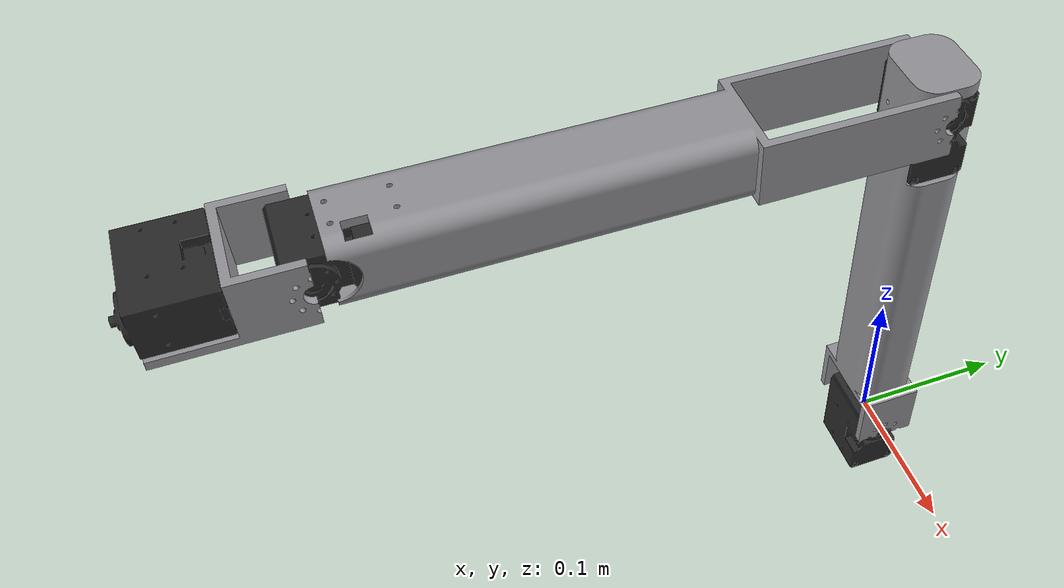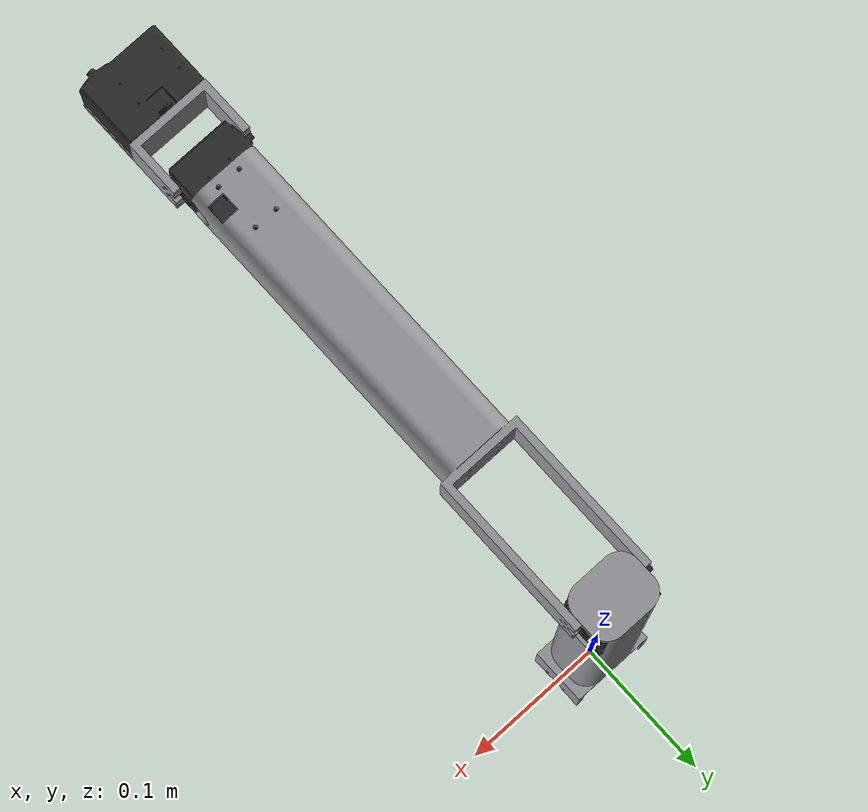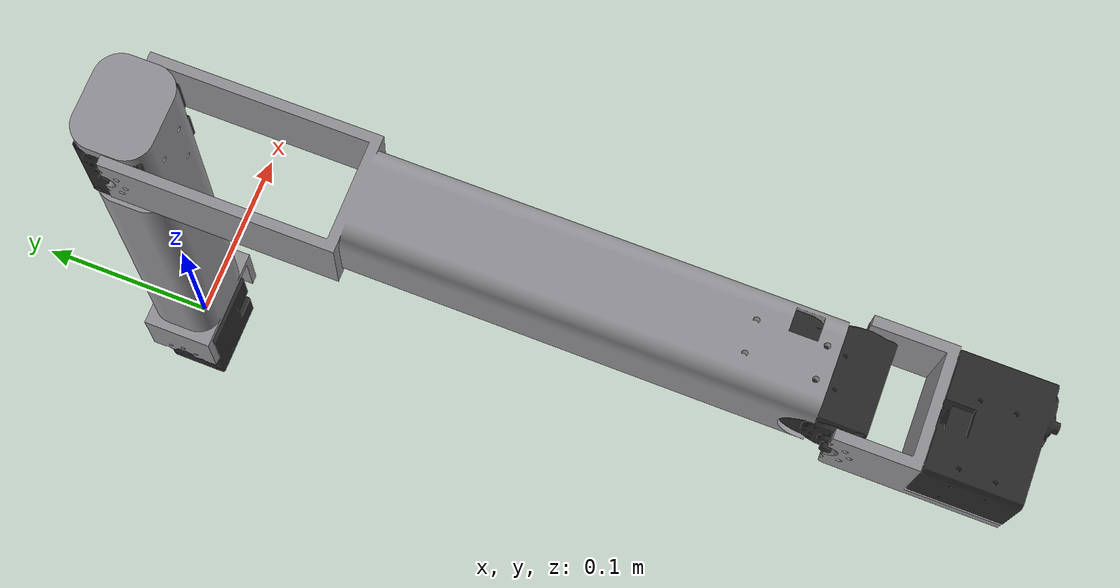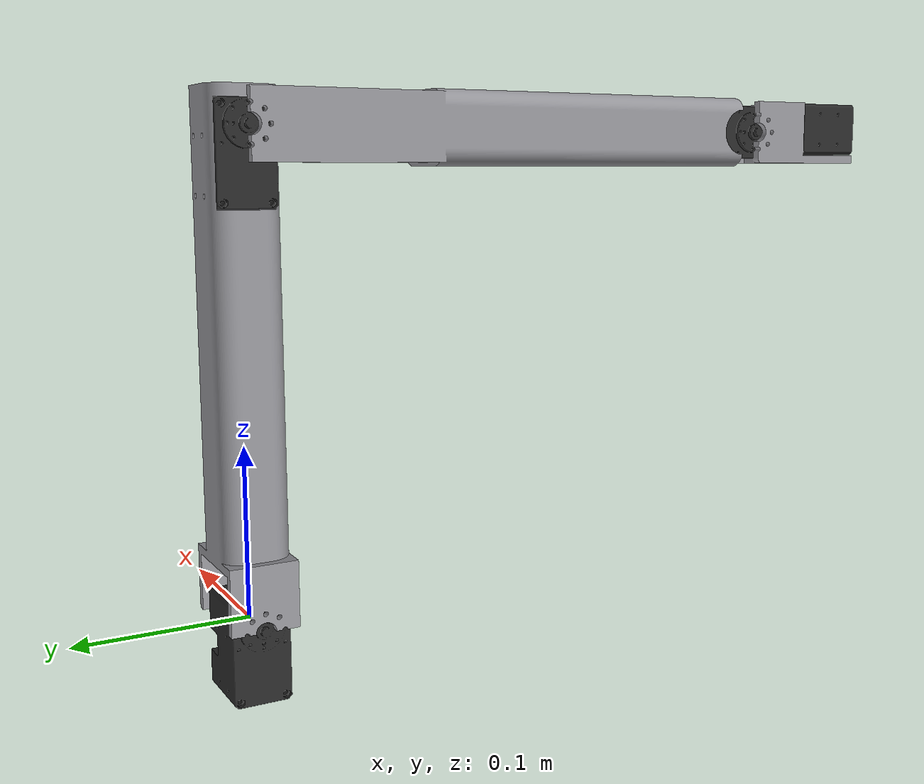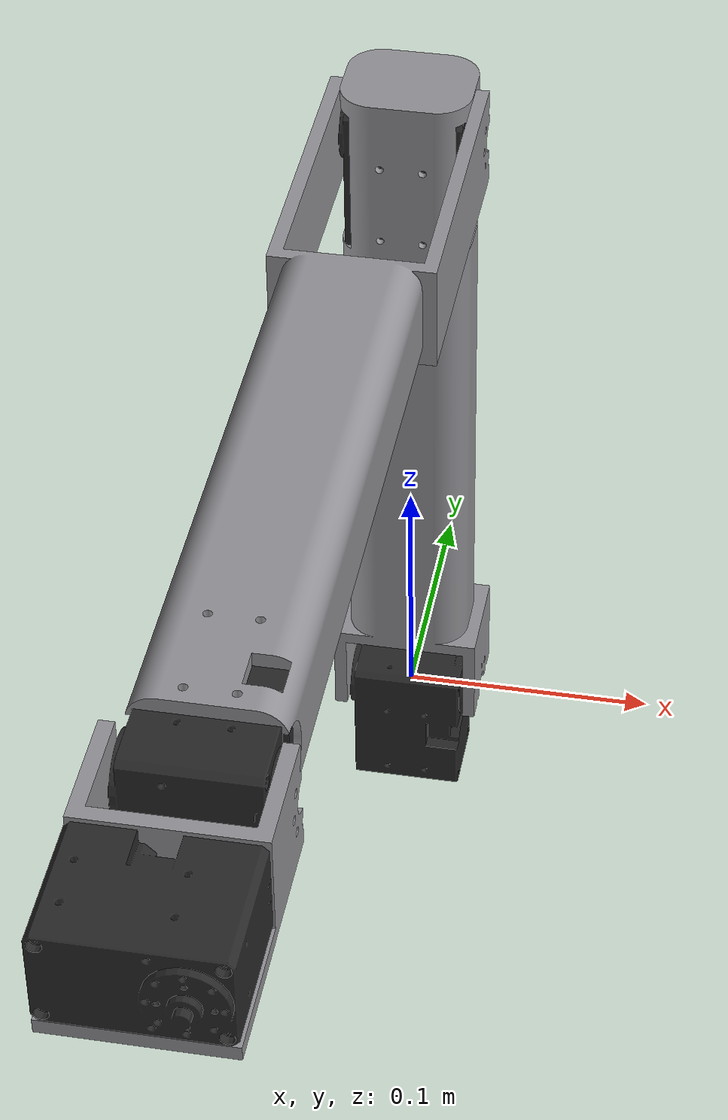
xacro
<?xml version="1.0"?>
<!-- Standalone robot used by the MoveIt demo, with mock ros2_control hardware. -->
<robot name="rav_manipulator" xmlns:xacro="http://www.ros.org/wiki/xacro">
  <xacro:arg name="use_fake_hardware" default="true"/>
  <xacro:include filename="$(find rav_description)/urdf/rav_manipulator.urdf.xacro"/>

  <link name="manipulator_world"/>
  <xacro:rav_manipulator
      parent_link="manipulator_world"
      mount_xyz="0 0 0"
      mount_rpy="0 0 0"
      use_fake_hardware="$(arg use_fake_hardware)"/>
</robot>

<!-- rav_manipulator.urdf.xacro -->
<robot name="rav_manipulator" xmlns:xacro="http://www.ros.org/wiki/xacro">

  <xacro:macro name="rav_manipulator"
               params="parent_link mount_xyz:='0 0 0' mount_rpy:='0 0 0' use_fake_hardware:=false">

    <xacro:property name="j1_to_j2_y" value="0.000029639983"/>
    <xacro:property name="j1_to_j2_z" value="0.278118072919"/>
    <xacro:property name="j2_to_j3_y" value="-0.343030187591"/>
    <xacro:property name="j2_to_j3_z" value="-0.000015558969"/>

    <!-- Limites provisórios: somente para RViz/MoveIt sem hardware real. -->
    <xacro:property name="joint_lower_limit" value="${-pi / 2.0}"/>
    <xacro:property name="joint_upper_limit" value="${ pi / 2.0}"/>
    <xacro:property name="joint_effort_limit" value="10.0"/>
    <xacro:property name="joint_velocity_limit" value="0.50"/>

    <material name="rav_manipulator_motor">
      <color rgba="0.16 0.16 0.16 1.0"/>
    </material>
    <material name="rav_manipulator_structure">
      <color rgba="0.58 0.58 0.60 1.0"/>
    </material>

    <joint name="rav_manipulator_mount_joint" type="fixed">
      <parent link="${parent_link}"/>
      <child link="manipulator_base_link"/>
      <origin xyz="${mount_xyz}" rpy="${mount_rpy}"/>
    </joint>

    <!--
      Dynamixel 1: a carcaça é fixada diretamente à estrutura interna do RAV.
      O origin abaixo leva o centro do horn do STL para a origem do link.
    -->
    <link name="manipulator_base_link">
      <visual>
        <origin xyz="0 0.047471563258 -0.733684638388" rpy="0 0 0"/>
        <geometry>
          <mesh filename="package://rav_description/meshes/manipulator/dynamixel_xm540.stl"
                scale="0.001 0.001 0.001"/>
        </geometry>
        <material name="rav_manipulator_motor"/>
      </visual>
      <collision>
        <origin xyz="0 0.047471563258 -0.733684638388" rpy="0 0 0"/>
        <geometry>
          <mesh filename="package://rav_description/meshes/manipulator/dynamixel_xm540.stl"
                scale="0.001 0.001 0.001"/>
        </geometry>
      </collision>
    </link>

    <!-- J1: o horn do Dynamixel 1 movimenta U aço 1 + Link 1. -->
    <joint name="shoulder_joint" type="revolute">
      <parent link="manipulator_base_link"/>
      <child link="shoulder_link"/>
      <origin xyz="0 0 0" rpy="0 0 0"/>
      <axis xyz="1 0 0"/>
      <limit lower="${joint_lower_limit}" upper="${joint_upper_limit}"
             effort="${joint_effort_limit}" velocity="${joint_velocity_limit}"/>
    </joint>

    <!--
      Conjunto rígido do primeiro elo:
      U aço 1 + Link 1 + carcaça fixa do Dynamixel 2.
    -->
    <link name="shoulder_link">
      <visual>
        <origin xyz="0 0.047471563258 -0.733684638388" rpy="0 0 0"/>
        <geometry>
          <mesh filename="package://rav_description/meshes/manipulator/link_1_assembly.stl"
                scale="0.001 0.001 0.001"/>
        </geometry>
        <material name="rav_manipulator_structure"/>
      </visual>
      <collision>
        <origin xyz="0 0.047471563258 -0.733684638388" rpy="0 0 0"/>
        <geometry>
          <mesh filename="package://rav_description/meshes/manipulator/link_1_assembly.stl"
                scale="0.001 0.001 0.001"/>
        </geometry>
      </collision>

      <!-- Corpo do Dynamixel 2, fixo no Link 1. -->
      <visual>
        <origin xyz="0 0.047501203241 -0.455566565469" rpy="0 0 0"/>
        <geometry>
          <mesh filename="package://rav_description/meshes/manipulator/dynamixel_xm540.stl"
                scale="0.001 0.001 0.001"/>
        </geometry>
        <material name="rav_manipulator_motor"/>
      </visual>
      <collision>
        <origin xyz="0 0.047501203241 -0.455566565469" rpy="0 0 0"/>
        <geometry>
          <mesh filename="package://rav_description/meshes/manipulator/dynamixel_xm540.stl"
                scale="0.001 0.001 0.001"/>
        </geometry>
      </collision>
    </link>

    <!-- J2: o horn do Dynamixel 2 movimenta U aço 2 + Link 2. -->
    <joint name="elbow_joint" type="revolute">
      <parent link="shoulder_link"/>
      <child link="elbow_link"/>
      <origin xyz="0 ${j1_to_j2_y} ${j1_to_j2_z}" rpy="0 0 0"/>
      <axis xyz="1 0 0"/>
      <limit lower="${joint_lower_limit}" upper="${joint_upper_limit}"
             effort="${joint_effort_limit}" velocity="${joint_velocity_limit}"/>
    </joint>

    <!--
      Conjunto rígido do segundo elo:
      U aço 2 + Link 2 + carcaça fixa do Dynamixel 3.
    -->
    <link name="elbow_link">
      <visual>
        <origin xyz="0 0.047441923275 -1.011802711307" rpy="0 0 0"/>
        <geometry>
          <mesh filename="package://rav_description/meshes/manipulator/link_2_assembly.stl"
                scale="0.001 0.001 0.001"/>
        </geometry>
        <material name="rav_manipulator_structure"/>
      </visual>
      <collision>
        <origin xyz="0 0.047441923275 -1.011802711307" rpy="0 0 0"/>
        <geometry>
          <mesh filename="package://rav_description/meshes/manipulator/link_2_assembly.stl"
                scale="0.001 0.001 0.001"/>
        </geometry>
      </collision>

      <visual>
        <origin xyz="0 0.390654450797 0.047456004289" rpy="1.57079632679 0 0"/>
        <geometry>
          <mesh filename="package://rav_description/meshes/manipulator/dynamixel_xm540.stl"
                scale="0.001 0.001 0.001"/>
        </geometry>
        <material name="rav_manipulator_motor"/>
      </visual>
      <collision>
        <origin xyz="0 0.390654450797 0.047456004289" rpy="1.57079632679 0 0"/>
        <geometry>
          <mesh filename="package://rav_description/meshes/manipulator/dynamixel_xm540.stl"
                scale="0.001 0.001 0.001"/>
        </geometry>
      </collision>
    </link>

    <!-- J3: o horn do Dynamixel 3 movimenta U aço 3 e a futura garra. -->
    <joint name="wrist_joint" type="revolute">
      <parent link="elbow_link"/>
      <child link="wrist_link"/>
      <origin xyz="0 ${j2_to_j3_y} ${j2_to_j3_z}" rpy="0 0 0"/>
      <axis xyz="1 0 0"/>
      <limit lower="${joint_lower_limit}" upper="${joint_upper_limit}"
             effort="${joint_effort_limit}" velocity="${joint_velocity_limit}"/>
    </joint>

    <!-- U aço 3, onde o Dynamixel 4 será fixado quando a garra entrar. -->
    <link name="wrist_link">
      <visual>
        <origin xyz="0 0.390472110866 -1.011787152338" rpy="0 0 0"/>
        <geometry>
          <mesh filename="package://rav_description/meshes/manipulator/wrist_assembly.stl"
                scale="0.001 0.001 0.001"/>
        </geometry>
        <material name="rav_manipulator_structure"/>
      </visual>
      <collision>
        <origin xyz="0 0.390472110866 -1.011787152338" rpy="0 0 0"/>
        <geometry>
          <mesh filename="package://rav_description/meshes/manipulator/wrist_assembly.stl"
                scale="0.001 0.001 0.001"/>
        </geometry>
      </collision>

      <visual>
        <origin xyz="-0.718 -0.0619 0.0499"
                rpy="1.57079632679 0 1.57079632679"/>
        <geometry>
          <mesh filename="package://rav_description/meshes/manipulator/dynamixel_xm540.stl"
                scale="0.001 0.001 0.001"/>
        </geometry>
        <material name="rav_manipulator_motor"/>
      </visual>
      <collision>
        <origin xyz="-0.718 -0.0619 0.0499"
                rpy="1.57079632679 0 1.57079632679"/>
        <geometry>
          <mesh filename="package://rav_description/meshes/manipulator/dynamixel_xm540.stl"
                scale="0.001 0.001 0.001"/>
        </geometry>
      </collision>
    </link>

    <!-- Frame neutro para a futura garra. A posição final ainda não foi presumida. -->
    <link name="gripper_mount"/>
    <joint name="gripper_mount_joint" type="fixed">
      <parent link="wrist_link"/>
      <child link="gripper_mount"/>
      <origin xyz="0 0 0" rpy="0 0 0"/>
    </joint>

    <!-- Simulação somente para o demo do MoveIt, sem OpenCM/Dynamixel físico. -->
    <xacro:if value="${use_fake_hardware}">
      <ros2_control name="RavManipulatorFakeSystem" type="system">
        <hardware>
          <plugin>mock_components/GenericSystem</plugin>
        </hardware>
        <joint name="shoulder_joint">
          <command_interface name="position"/>
          <state_interface name="position"/>
          <state_interface name="velocity"/>
        </joint>
        <joint name="elbow_joint">
          <command_interface name="position"/>
          <state_interface name="position"/>
          <state_interface name="velocity"/>
        </joint>
        <joint name="wrist_joint">
          <command_interface name="position"/>
          <state_interface name="position"/>
          <state_interface name="velocity"/>
        </joint>
      </ros2_control>
    </xacro:if>

  </xacro:macro>
</robot>
